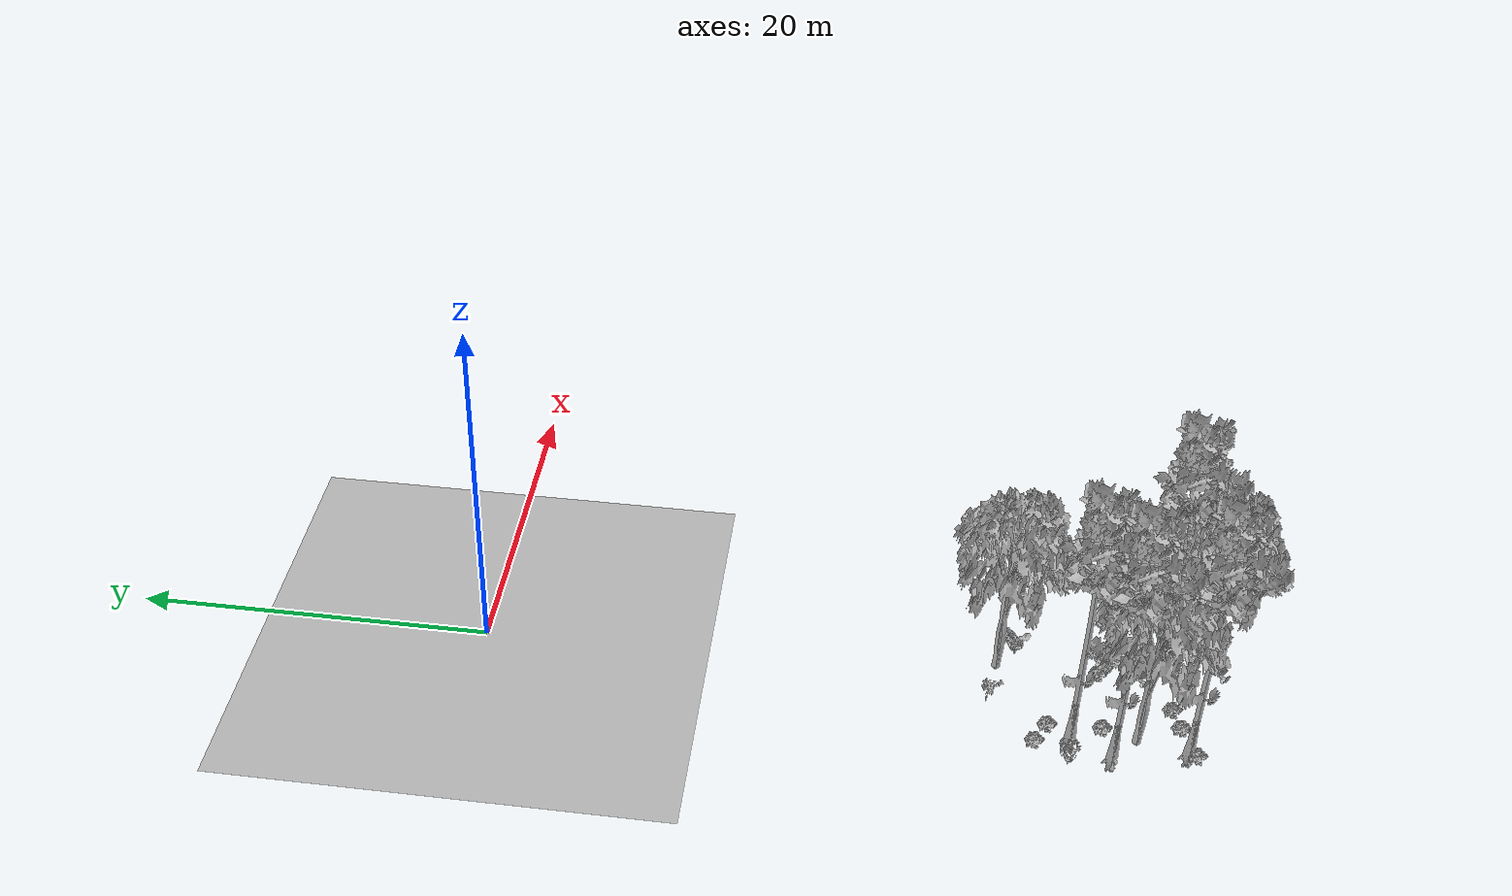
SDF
<sdf version="1.7">
 <world name="default">
  <model name="ground_plane">
   <static>1</static>
   <link name="link">
    <collision name="collision">
     <pose>-50 0 0 0 -0 0</pose>
     <geometry><plane><normal>0 0 1</normal><size>80 80</size></plane></geometry>
     <surface><contact><ode><min_depth>0.01</min_depth><max_vel>0</max_vel></ode></contact></surface>
    </collision>
    <visual name="grass">
     <cast_shadows>0</cast_shadows>
     <geometry>
      <mesh>
       <scale>0.46714285714285714 0.46714285714285714 0.1</scale>
       <uri>file://grass_plane/meshes/grass_plane.dae</uri>
      </mesh>
     </geometry>
    </visual>
   </link>
  </model>
  <model name="Tree 147">
   <static>1</static>
   <pose>2.79003461518343 -37.263412632105954 0 1.57079 -0 0</pose>
   <link name="link">
    <collision name="collision">
     <geometry><mesh><scale>3.5 5 3.5</scale><uri>model://tree_9/meshes/tree_9.obj</uri></mesh></geometry>
    </collision>
    <visual name="visual">
     <geometry><mesh><scale>3.5 5 3.5</scale><uri>model://tree_9/meshes/tree_9.obj</uri></mesh></geometry>
    </visual>
   </link>
  </model>
  <model name="Tree 240">
   <static>1</static>
   <pose>-3.590112871734995 -32.3622638678536 0 1.57079 -0 0</pose>
   <link name="link">
    <collision name="collision">
     <geometry><mesh><scale>3.5 5 3.5</scale><uri>model://tree_9/meshes/tree_9.obj</uri></mesh></geometry>
    </collision>
    <visual name="visual">
     <geometry><mesh><scale>3.5 5 3.5</scale><uri>model://tree_9/meshes/tree_9.obj</uri></mesh></geometry>
    </visual>
   </link>
  </model>
  <model name="Tree 254">
   <static>1</static>
   <pose>-4.826137065684719 -34.50676219204152 0 1.57079 -0 0</pose>
   <link name="link">
    <collision name="collision">
     <geometry><mesh><scale>3.5 5 3.5</scale><uri>model://tree_9/meshes/tree_9.obj</uri></mesh></geometry>
    </collision>
    <visual name="visual">
     <geometry><mesh><scale>3.5 5 3.5</scale><uri>model://tree_9/meshes/tree_9.obj</uri></mesh></geometry>
    </visual>
   </link>
  </model>
  <model name="Tree 269">
   <static>1</static>
   <pose>-3.9419504134894936 -38.518655192654315 0 1.57079 -0 0</pose>
   <link name="link">
    <collision name="collision">
     <geometry><mesh><scale>3.5 5 3.5</scale><uri>model://tree_9/meshes/tree_9.obj</uri></mesh></geometry>
    </collision>
    <visual name="visual">
     <geometry><mesh><scale>3.5 5 3.5</scale><uri>model://tree_9/meshes/tree_9.obj</uri></mesh></geometry>
    </visual>
   </link>
  </model>
  <model name="Tree 325">
   <static>1</static>
   <pose>-3.5679595208483335 -35.84656575104316 0 1.57079 -0 0</pose>
   <link name="link">
    <collision name="collision">
     <geometry><mesh><scale>3.5 5 3.5</scale><uri>model://tree_2/meshes/tree_2.obj</uri></mesh></geometry>
    </collision>
    <visual name="visual">
     <geometry><mesh><scale>3.5 5 3.5</scale><uri>model://tree_2/meshes/tree_2.obj</uri></mesh></geometry>
    </visual>
   </link>
  </model>
  <model name="Tree 353">
   <static>1</static>
   <pose>1.92685599650018 -37.1989409166407 0 1.57079 -0 0</pose>
   <link name="link">
    <collision name="collision">
     <geometry><mesh><scale>3.5 5 3.5</scale><uri>model://tree_2/meshes/tree_2.obj</uri></mesh></geometry>
    </collision>
    <visual name="visual">
     <geometry><mesh><scale>3.5 5 3.5</scale><uri>model://tree_2/meshes/tree_2.obj</uri></mesh></geometry>
    </visual>
   </link>
  </model>
  <model name="Tree 382">
   <static>1</static>
   <pose>2.7363320349799807 -39.31845047578058 0 1.57079 -0 0</pose>
   <link name="link">
    <collision name="collision">
     <geometry><mesh><scale>3.5 5 3.5</scale><uri>model://tree_2/meshes/tree_2.obj</uri></mesh></geometry>
    </collision>
    <visual name="visual">
     <geometry><mesh><scale>3.5 5 3.5</scale><uri>model://tree_2/meshes/tree_2.obj</uri></mesh></geometry>
    </visual>
   </link>
  </model>
  <model name="Tree 638">
   <static>1</static>
   <pose>1.2508075110510433 -28.422825045896367 0 1.57079 -0 0</pose>
   <link name="link">
    <collision name="collision">
     <geometry><mesh><scale>3.5 5 3.5</scale><uri>model://tree_2/meshes/tree_2.obj</uri></mesh></geometry>
    </collision>
    <visual name="visual">
     <geometry><mesh><scale>3.5 5 3.5</scale><uri>model://tree_2/meshes/tree_2.obj</uri></mesh></geometry>
    </visual>
   </link>
  </model>
  <model name="Bush 67">
   <static>1</static>
   <pose>1.826800477303209 -34.66398787040659 0 1.57079 -0 0</pose>
   <link name="link">
    <collision name="collision">
     <geometry><mesh><scale>2 2 2</scale><uri>model://bush_1/meshes/bush_1.obj</uri></mesh></geometry>
     <surface><contact><collide_without_contact>false</collide_without_contact></contact></surface>
    </collision>
    <visual name="visual">
     <geometry><mesh><scale>2 2 2</scale><uri>model://bush_1/meshes/bush_1.obj</uri></mesh></geometry>
    </visual>
   </link>
  </model>
  <model name="Bush 100">
   <static>1</static>
   <pose>2.6397129412658273 -29.43735822335408 0 1.57079 -0 0</pose>
   <link name="link">
    <collision name="collision">
     <geometry><mesh><scale>2 2 2</scale><uri>model://bush_0/meshes/bush_0.obj</uri></mesh></geometry>
     <surface><contact><collide_without_contact>false</collide_without_contact></contact></surface>
    </collision>
    <visual name="visual">
     <geometry><mesh><scale>2 2 2</scale><uri>model://bush_0/meshes/bush_0.obj</uri></mesh></geometry>
    </visual>
   </link>
  </model>
  <model name="Bush 149">
   <static>1</static>
   <pose>-5.324990356480001 -32.26214324360836 0 1.57079 -0 0</pose>
   <link name="link">
    <collision name="collision">
     <geometry><mesh><scale>2 2 2</scale><uri>model://bush_4/meshes/bush_4.obj</uri></mesh></geometry>
     <surface><contact><collide_without_contact>false</collide_without_contact></contact></surface>
    </collision>
    <visual name="visual">
     <geometry><mesh><scale>2 2 2</scale><uri>model://bush_4/meshes/bush_4.obj</uri></mesh></geometry>
    </visual>
   </link>
  </model>
  <model name="Bush 166">
   <static>1</static>
   <pose>-2.7261319636846792 -34.10380188525367 0 1.57079 -0 0</pose>
   <link name="link">
    <collision name="collision">
     <geometry><mesh><scale>2 2 2</scale><uri>model://bush_2/meshes/bush_2.obj</uri></mesh></geometry>
     <surface><contact><collide_without_contact>false</collide_without_contact></contact></surface>
    </collision>
    <visual name="visual">
     <geometry><mesh><scale>2 2 2</scale><uri>model://bush_2/meshes/bush_2.obj</uri></mesh></geometry>
    </visual>
   </link>
  </model>
  <model name="Bush 174">
   <static>1</static>
   <pose>3.1659647130592745 -35.72601389781614 0 1.57079 -0 0</pose>
   <link name="link">
    <collision name="collision">
     <geometry><mesh><scale>2 2 2</scale><uri>model://bush_2/meshes/bush_2.obj</uri></mesh></geometry>
     <surface><contact><collide_without_contact>false</collide_without_contact></contact></surface>
    </collision>
    <visual name="visual">
     <geometry><mesh><scale>2 2 2</scale><uri>model://bush_2/meshes/bush_2.obj</uri></mesh></geometry>
    </visual>
   </link>
  </model>
  <model name="Bush 292">
   <static>1</static>
   <pose>-4.123181351068041 -30.517628769931946 0 1.57079 -0 0</pose>
   <link name="link">
    <collision name="collision">
     <geometry><mesh><scale>2 2 2</scale><uri>model://bush_2/meshes/bush_2.obj</uri></mesh></geometry>
     <surface><contact><collide_without_contact>false</collide_without_contact></contact></surface>
    </collision>
    <visual name="visual">
     <geometry><mesh><scale>2 2 2</scale><uri>model://bush_2/meshes/bush_2.obj</uri></mesh></geometry>
    </visual>
   </link>
  </model>
  <model name="Bush 296">
   <static>1</static>
   <pose>-2.146751958068691 -38.28352519951836 0 1.57079 -0 0</pose>
   <link name="link">
    <collision name="collision">
     <geometry><mesh><scale>2 2 2</scale><uri>model://bush_2/meshes/bush_2.obj</uri></mesh></geometry>
     <surface><contact><collide_without_contact>false</collide_without_contact></contact></surface>
    </collision>
    <visual name="visual">
     <geometry><mesh><scale>2 2 2</scale><uri>model://bush_2/meshes/bush_2.obj</uri></mesh></geometry>
    </visual>
   </link>
  </model>
  <model name="Bush 318">
   <static>1</static>
   <pose>-0.8169694081057557 -37.88589682359246 0 1.57079 -0 0</pose>
   <link name="link">
    <collision name="collision">
     <geometry><mesh><scale>2 2 2</scale><uri>model://bush_2/meshes/bush_2.obj</uri></mesh></geometry>
     <surface><contact><collide_without_contact>false</collide_without_contact></contact></surface>
    </collision>
    <visual name="visual">
     <geometry><mesh><scale>2 2 2</scale><uri>model://bush_2/meshes/bush_2.obj</uri></mesh></geometry>
    </visual>
   </link>
  </model>
  <model name="Bush 322">
   <static>1</static>
   <pose>-2.8439490838853416 -31.192094454181376 0 1.57079 -0 0</pose>
   <link name="link">
    <collision name="collision">
     <geometry><mesh><scale>2 2 2</scale><uri>model://bush_2/meshes/bush_2.obj</uri></mesh></geometry>
     <surface><contact><collide_without_contact>false</collide_without_contact></contact></surface>
    </collision>
    <visual name="visual">
     <geometry><mesh><scale>2 2 2</scale><uri>model://bush_2/meshes/bush_2.obj</uri></mesh></geometry>
    </visual>
   </link>
  </model>
  <model name="Bush 392">
   <static>1</static>
   <pose>2.102268662458343 -36.40409427946089 0 1.57079 -0 0</pose>
   <link name="link">
    <collision name="collision">
     <geometry><mesh><scale>2 2 2</scale><uri>model://bush_2/meshes/bush_2.obj</uri></mesh></geometry>
     <surface><contact><collide_without_contact>false</collide_without_contact></contact></surface>
    </collision>
    <visual name="visual">
     <geometry><mesh><scale>2 2 2</scale><uri>model://bush_2/meshes/bush_2.obj</uri></mesh></geometry>
    </visual>
   </link>
  </model>
  <model name="Bush 444">
   <static>1</static>
   <pose>1.5016524042228667 -34.00791280597318 0 1.57079 -0 0</pose>
   <link name="link">
    <collision name="collision">
     <geometry><mesh><scale>2 2 2</scale><uri>model://bush_2/meshes/bush_2.obj</uri></mesh></geometry>
     <surface><contact><collide_without_contact>false</collide_without_contact></contact></surface>
    </collision>
    <visual name="visual">
     <geometry><mesh><scale>2 2 2</scale><uri>model://bush_2/meshes/bush_2.obj</uri></mesh></geometry>
    </visual>
   </link>
  </model>
  <model name="Bush 511">
   <static>1</static>
   <pose>3.9166681465510678 -28.974911111826216 0 1.57079 -0 0</pose>
   <link name="link">
    <collision name="collision">
     <geometry><mesh><scale>2 2 2</scale><uri>model://bush_2/meshes/bush_2.obj</uri></mesh></geometry>
     <surface><contact><collide_without_contact>false</collide_without_contact></contact></surface>
    </collision>
    <visual name="visual">
     <geometry><mesh><scale>2 2 2</scale><uri>model://bush_2/meshes/bush_2.obj</uri></mesh></geometry>
    </visual>
   </link>
  </model>
  <model name="Bush 532">
   <static>1</static>
   <pose>-1.3747847089044072 -27.906170057577818 0 1.57079 -0 0</pose>
   <link name="link">
    <collision name="collision">
     <geometry><mesh><scale>2 2 2</scale><uri>model://bush_5/meshes/bush_5.obj</uri></mesh></geometry>
     <surface><contact><collide_without_contact>false</collide_without_contact></contact></surface>
    </collision>
    <visual name="visual">
     <geometry><mesh><scale>2 2 2</scale><uri>model://bush_5/meshes/bush_5.obj</uri></mesh></geometry>
    </visual>
   </link>
  </model>
  <model name="Bush 580">
   <static>1</static>
   <pose>-4.110162607739525 -38.97584883233549 0 1.57079 -0 0</pose>
   <link name="link">
    <collision name="collision">
     <geometry><mesh><scale>2 2 2</scale><uri>model://bush_2/meshes/bush_2.obj</uri></mesh></geometry>
     <surface><contact><collide_without_contact>false</collide_without_contact></contact></surface>
    </collision>
    <visual name="visual">
     <geometry><mesh><scale>2 2 2</scale><uri>model://bush_2/meshes/bush_2.obj</uri></mesh></geometry>
    </visual>
   </link>
  </model>
 </world>
</sdf>
